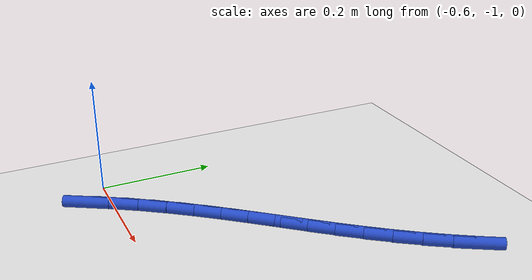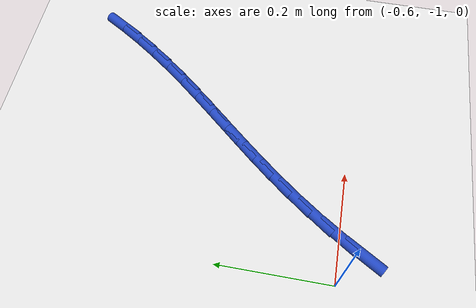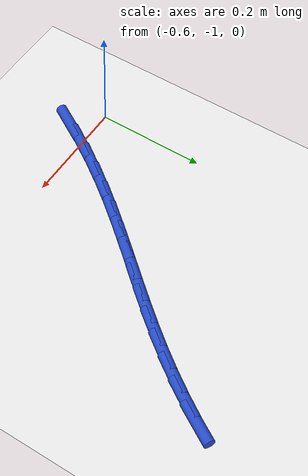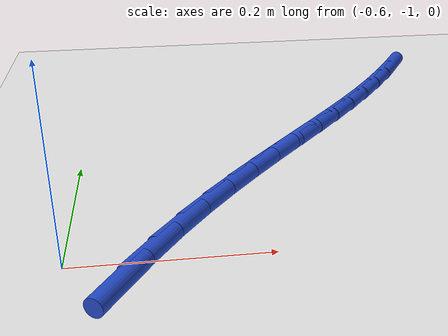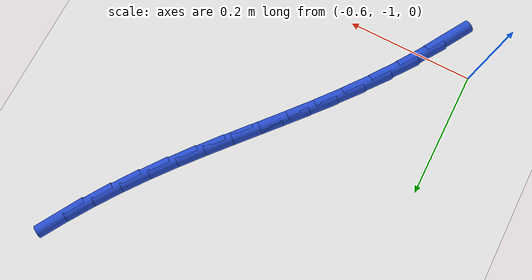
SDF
<sdf version="1.6">
 <world name="default">
  <model name="ground_plane">
   <static>1</static>
   <link name="link">
    <collision name="collision">
     <geometry><plane><normal>0 0 1</normal><size>100 100</size></plane></geometry>
     <surface><friction><ode><mu>100</mu><mu2>50</mu2></ode></friction></surface>
    </collision>
    <visual name="visual">
     <cast_shadows>0</cast_shadows>
     <geometry><plane><normal>0 0 1</normal><size>100 100</size></plane></geometry>
     <material>
      <script><uri>file://media/materials/scripts/gazebo.material</uri><name>Gazebo/WhiteGlow</name></script>
     </material>
    </visual>
   </link>
  </model>
  <model name="line">
   <link name="link_154">
    <pose>-0.5446409973479176 -1.041172924649564 0.01 0 1.57 1.028001027258029</pose>
    <collision name="collision">
     <geometry><cylinder><radius>0.01</radius><length>0.08</length></cylinder></geometry>
    </collision>
    <visual name="visual">
     <material>
      <script><name>Gazebo/Blue</name><uri>file://media/materials/scripts/gazebo.material</uri></script>
     </material>
     <geometry><cylinder><radius>0.01</radius><length>0.08</length></cylinder></geometry>
    </visual>
   </link>
   <link name="link_155">
    <pose>-0.5182325418764802 -0.9973949200823778 0.01 0 1.57 0.9855152673698326</pose>
    <collision name="collision">
     <geometry><cylinder><radius>0.01</radius><length>0.08</length></cylinder></geometry>
    </collision>
    <visual name="visual">
     <material>
      <script><name>Gazebo/Blue</name><uri>file://media/materials/scripts/gazebo.material</uri></script>
     </material>
     <geometry><cylinder><radius>0.01</radius><length>0.08</length></cylinder></geometry>
    </visual>
   </link>
   <link name="link_156">
    <pose>-0.4909024560094156 -0.9561570646834674 0.01 0 1.57 0.9460624619401923</pose>
    <collision name="collision">
     <geometry><cylinder><radius>0.01</radius><length>0.08</length></cylinder></geometry>
    </collision>
    <visual name="visual">
     <material>
      <script><name>Gazebo/Blue</name><uri>file://media/materials/scripts/gazebo.material</uri></script>
     </material>
     <geometry><cylinder><radius>0.01</radius><length>0.08</length></cylinder></geometry>
    </visual>
   </link>
   <link name="link_157">
    <pose>-0.46279298775096017 -0.9171746020969331 0.01 0 1.57 0.9124599505117242</pose>
    <collision name="collision">
     <geometry><cylinder><radius>0.01</radius><length>0.08</length></cylinder></geometry>
    </collision>
    <visual name="visual">
     <material>
      <script><name>Gazebo/Blue</name><uri>file://media/materials/scripts/gazebo.material</uri></script>
     </material>
     <geometry><cylinder><radius>0.01</radius><length>0.08</length></cylinder></geometry>
    </visual>
   </link>
   <link name="link_158">
    <pose>-0.43408163659103777 -0.8800531027445292 0.01 0 1.57 0.8856804999241942</pose>
    <collision name="collision">
     <geometry><cylinder><radius>0.01</radius><length>0.08</length></cylinder></geometry>
    </collision>
    <visual name="visual">
     <material>
      <script><name>Gazebo/Blue</name><uri>file://media/materials/scripts/gazebo.material</uri></script>
     </material>
     <geometry><cylinder><radius>0.01</radius><length>0.08</length></cylinder></geometry>
    </visual>
   </link>
   <link name="link_159">
    <pose>-0.4049459020195711 -0.8443981370480066 0.01 0 1.57 0.8665174118857462</pose>
    <collision name="collision">
     <geometry><cylinder><radius>0.01</radius><length>0.08</length></cylinder></geometry>
    </collision>
    <visual name="visual">
     <material>
      <script><name>Gazebo/Blue</name><uri>file://media/materials/scripts/gazebo.material</uri></script>
     </material>
     <geometry><cylinder><radius>0.01</radius><length>0.08</length></cylinder></geometry>
    </visual>
   </link>
   <link name="link_160">
    <pose>-0.37556328352648466 -0.8098152754291199 0.01 0 1.57 0.8555697186921507</pose>
    <collision name="collision">
     <geometry><cylinder><radius>0.01</radius><length>0.08</length></cylinder></geometry>
    </collision>
    <visual name="visual">
     <material>
      <script><name>Gazebo/Blue</name><uri>file://media/materials/scripts/gazebo.material</uri></script>
     </material>
     <geometry><cylinder><radius>0.01</radius><length>0.08</length></cylinder></geometry>
    </visual>
   </link>
   <link name="link_161">
    <pose>-0.3461112806017014 -0.7759100883096213 0.01 0 1.57 0.8532363820577148</pose>
    <collision name="collision">
     <geometry><cylinder><radius>0.01</radius><length>0.08</length></cylinder></geometry>
    </collision>
    <visual name="visual">
     <material>
      <script><name>Gazebo/Blue</name><uri>file://media/materials/scripts/gazebo.material</uri></script>
     </material>
     <geometry><cylinder><radius>0.01</radius><length>0.08</length></cylinder></geometry>
    </visual>
   </link>
   <link name="link_162">
    <pose>-0.31676739273514476 -0.7422881461112637 0.01 0 1.57 0.8597116004022515</pose>
    <collision name="collision">
     <geometry><cylinder><radius>0.01</radius><length>0.08</length></cylinder></geometry>
    </collision>
    <visual name="visual">
     <material>
      <script><name>Gazebo/Blue</name><uri>file://media/materials/scripts/gazebo.material</uri></script>
     </material>
     <geometry><cylinder><radius>0.01</radius><length>0.08</length></cylinder></geometry>
    </visual>
   </link>
   <link name="link_163">
    <pose>-0.2877091194167382 -0.7085550192557996 0.01 0 1.57 0.8749752688669457</pose>
    <collision name="collision">
     <geometry><cylinder><radius>0.01</radius><length>0.08</length></cylinder></geometry>
    </collision>
    <visual name="visual">
     <material>
      <script><name>Gazebo/Blue</name><uri>file://media/materials/scripts/gazebo.material</uri></script>
     </material>
     <geometry><cylinder><radius>0.01</radius><length>0.08</length></cylinder></geometry>
    </visual>
   </link>
   <link name="link_164">
    <pose>-0.2591139601364052 -0.674316278164982 0.01 0 1.57 0.8987756062162863</pose>
    <collision name="collision">
     <geometry><cylinder><radius>0.01</radius><length>0.08</length></cylinder></geometry>
    </collision>
    <visual name="visual">
     <material>
      <script><name>Gazebo/Blue</name><uri>file://media/materials/scripts/gazebo.material</uri></script>
     </material>
     <geometry><cylinder><radius>0.01</radius><length>0.08</length></cylinder></geometry>
    </visual>
   </link>
   <link name="link_165">
    <pose>-0.23115941350581162 -0.6391775704901624 0.01 0 1.57 0.9292870661122963</pose>
    <collision name="collision">
     <geometry><cylinder><radius>0.01</radius><length>0.08</length></cylinder></geometry>
    </collision>
    <visual name="visual">
     <material>
      <script><name>Gazebo/Blue</name><uri>file://media/materials/scripts/gazebo.material</uri></script>
     </material>
     <geometry><cylinder><radius>0.01</radius><length>0.08</length></cylinder></geometry>
    </visual>
   </link>
   <link name="link_166">
    <pose>-0.20402185161255448 -0.6028436048776553 0.01 0 1.57 0.9622971199131692</pose>
    <collision name="collision">
     <geometry><cylinder><radius>0.01</radius><length>0.08</length></cylinder></geometry>
    </collision>
    <visual name="visual">
     <material>
      <script><name>Gazebo/Blue</name><uri>file://media/materials/scripts/gazebo.material</uri></script>
     </material>
     <geometry><cylinder><radius>0.01</radius><length>0.08</length></cylinder></geometry>
    </visual>
   </link>
   <link name="link_167">
    <pose>-0.1778743114522647 -0.5653123615840815 0.01 0 1.57 0.9972371038739356</pose>
    <collision name="collision">
     <geometry><cylinder><radius>0.01</radius><length>0.08</length></cylinder></geometry>
    </collision>
    <visual name="visual">
     <material>
      <script><name>Gazebo/Blue</name><uri>file://media/materials/scripts/gazebo.material</uri></script>
     </material>
     <geometry><cylinder><radius>0.01</radius><length>0.08</length></cylinder></geometry>
    </visual>
   </link>
   <link name="link_168">
    <pose>-0.15288921576189649 -0.5266358357578108 0.01 0 1.57 1.0342993349059924</pose>
    <collision name="collision">
     <geometry><cylinder><radius>0.01</radius><length>0.08</length></cylinder></geometry>
    </collision>
    <visual name="visual">
     <material>
      <script><name>Gazebo/Blue</name><uri>file://media/materials/scripts/gazebo.material</uri></script>
     </material>
     <geometry><cylinder><radius>0.01</radius><length>0.08</length></cylinder></geometry>
    </visual>
   </link>
  </model>
 </world>
</sdf>
